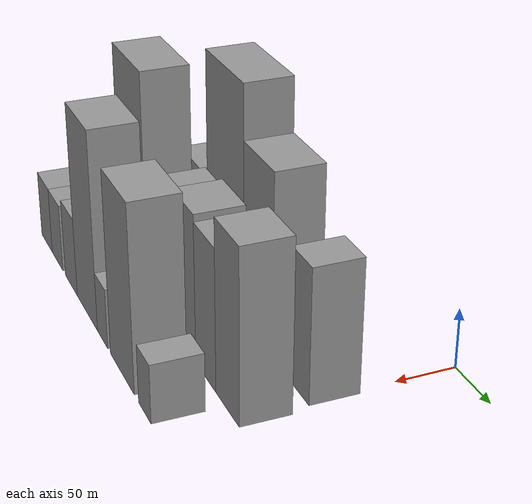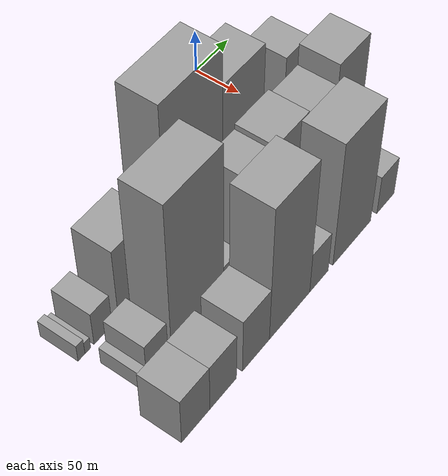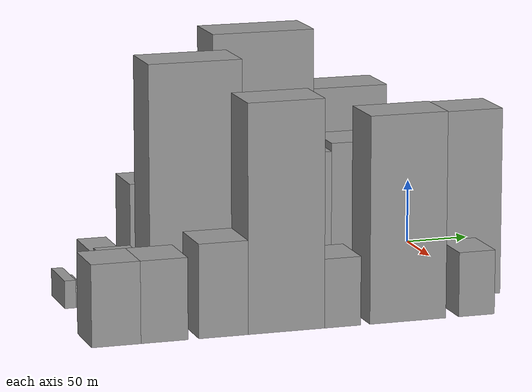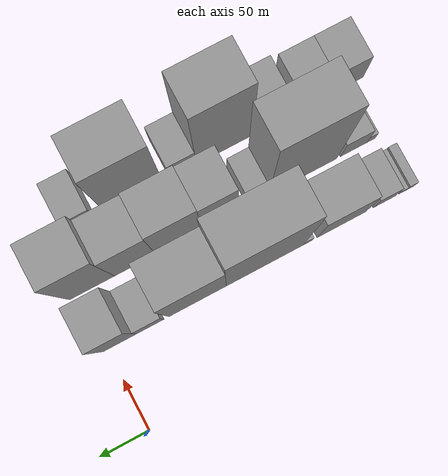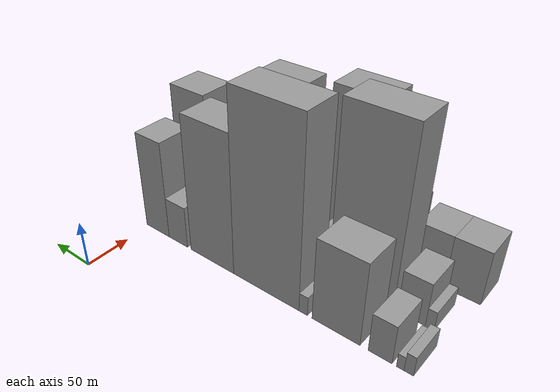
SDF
<sdf version="1.6">
 <world name="default">
  <model name="building_11">
   <static>1</static>
   <pose>100.0000 -307.1854 0 0.000000 0.000000 0.000000</pose>
   <link name="link">
    <pose>0 0 10.50 0 0 0</pose>
    <collision name="collision"><geometry><box><size>40.0000 8.5415 21.0000</size></box></geometry></collision>
    <visual name="visual">
     <cast_shadows>0</cast_shadows>
     <geometry><box><size>40.0000 8.5415 21.0000</size></box></geometry>
     <material>
      <script>
       <uri>model://grey_wall/materials/scripts</uri>
       <uri>model://grey_wall/materials/textures</uri>
       <name>vrc/grey_wall</name>
      </script>
     </material>
    </visual>
   </link>
  </model>
  <model name="building_12">
   <static>1</static>
   <pose>100.0000 -299.3905 0 0.000000 0.000000 0.000000</pose>
   <link name="link">
    <pose>0 0 7.50 0 0 0</pose>
    <collision name="collision"><geometry><box><size>40.0000 7.0482 15.0000</size></box></geometry></collision>
    <visual name="visual">
     <cast_shadows>0</cast_shadows>
     <geometry><box><size>40.0000 7.0482 15.0000</size></box></geometry>
     <material>
      <script>
       <uri>model://grey_wall/materials/scripts</uri>
       <uri>model://grey_wall/materials/textures</uri>
       <name>vrc/grey_wall</name>
      </script>
     </material>
    </visual>
   </link>
  </model>
  <model name="building_13">
   <static>1</static>
   <pose>100.0000 -280.5441 0 0.000000 0.000000 0.000000</pose>
   <link name="link">
    <pose>0 0 21.00 0 0 0</pose>
    <collision name="collision"><geometry><box><size>40.0000 22.6448 42.0000</size></box></geometry></collision>
    <visual name="visual">
     <cast_shadows>0</cast_shadows>
     <geometry><box><size>40.0000 22.6448 42.0000</size></box></geometry>
     <material>
      <script>
       <uri>model://grey_wall/materials/scripts</uri>
       <uri>model://grey_wall/materials/textures</uri>
       <name>vrc/grey_wall</name>
      </script>
     </material>
    </visual>
   </link>
  </model>
  <model name="building_14">
   <static>1</static>
   <pose>100.0000 -236.3965 0 0.000000 0.000000 0.000000</pose>
   <link name="link">
    <pose>0 0 45.00 0 0 0</pose>
    <collision name="collision"><geometry><box><size>40.0000 49.6503 90.0000</size></box></geometry></collision>
    <visual name="visual">
     <cast_shadows>0</cast_shadows>
     <geometry><box><size>40.0000 49.6503 90.0000</size></box></geometry>
     <material>
      <script>
       <uri>model://grey_wall/materials/scripts</uri>
       <uri>model://grey_wall/materials/textures</uri>
       <name>vrc/grey_wall</name>
      </script>
     </material>
    </visual>
   </link>
  </model>
  <model name="building_15">
   <static>1</static>
   <pose>100.0000 -201.8765 0 0.000000 0.000000 0.000000</pose>
   <link name="link">
    <pose>0 0 10.50 0 0 0</pose>
    <collision name="collision"><geometry><box><size>40.0000 9.3897 21.0000</size></box></geometry></collision>
    <visual name="visual">
     <cast_shadows>0</cast_shadows>
     <geometry><box><size>40.0000 9.3897 21.0000</size></box></geometry>
     <material>
      <script>
       <uri>model://grey_wall/materials/scripts</uri>
       <uri>model://grey_wall/materials/textures</uri>
       <name>vrc/grey_wall</name>
      </script>
     </material>
    </visual>
   </link>
  </model>
  <model name="building_16">
   <static>1</static>
   <pose>100.0000 -158.2002 0 0.000000 0.000000 0.000000</pose>
   <link name="link">
    <pose>0 0 99.00 0 0 0</pose>
    <collision name="collision"><geometry><box><size>40.0000 77.9629 198.0000</size></box></geometry></collision>
    <visual name="visual">
     <cast_shadows>0</cast_shadows>
     <geometry><box><size>40.0000 77.9629 198.0000</size></box></geometry>
     <material>
      <script>
       <uri>model://grey_wall/materials/scripts</uri>
       <uri>model://grey_wall/materials/textures</uri>
       <name>vrc/grey_wall</name>
      </script>
     </material>
    </visual>
   </link>
  </model>
  <model name="building_17">
   <static>1</static>
   <pose>100.0000 -90.4216 0 0.000000 0.000000 0.000000</pose>
   <link name="link">
    <pose>0 0 76.50 0 0 0</pose>
    <collision name="collision"><geometry><box><size>40.0000 57.5943 153.0000</size></box></geometry></collision>
    <visual name="visual">
     <cast_shadows>0</cast_shadows>
     <geometry><box><size>40.0000 57.5943 153.0000</size></box></geometry>
     <material>
      <script>
       <uri>model://grey_wall/materials/scripts</uri>
       <uri>model://grey_wall/materials/textures</uri>
       <name>vrc/grey_wall</name>
      </script>
     </material>
    </visual>
   </link>
  </model>
  <model name="building_18">
   <static>1</static>
   <pose>100.0000 -43.2304 0 0.000000 0.000000 0.000000</pose>
   <link name="link">
    <pose>0 0 24.00 0 0 0</pose>
    <collision name="collision"><geometry><box><size>40.0000 26.7879 48.0000</size></box></geometry></collision>
    <visual name="visual">
     <cast_shadows>0</cast_shadows>
     <geometry><box><size>40.0000 26.7879 48.0000</size></box></geometry>
     <material>
      <script>
       <uri>model://grey_wall/materials/scripts</uri>
       <uri>model://grey_wall/materials/textures</uri>
       <name>vrc/grey_wall</name>
      </script>
     </material>
    </visual>
   </link>
  </model>
  <model name="building_19">
   <static>1</static>
   <pose>100.0000 -12.8606 0 0.000000 0.000000 0.000000</pose>
   <link name="link">
    <pose>0 0 55.50 0 0 0</pose>
    <collision name="collision"><geometry><box><size>40.0000 33.9517 111.0000</size></box></geometry></collision>
    <visual name="visual">
     <cast_shadows>0</cast_shadows>
     <geometry><box><size>40.0000 33.9517 111.0000</size></box></geometry>
     <material>
      <script>
       <uri>model://grey_wall/materials/scripts</uri>
       <uri>model://grey_wall/materials/textures</uri>
       <name>vrc/grey_wall</name>
      </script>
     </material>
    </visual>
   </link>
  </model>
  <model name="building_44">
   <static>1</static>
   <pose>155.0000 -297.4022 0 0.000000 0.000000 0.000000</pose>
   <link name="link">
    <pose>0 0 10.50 0 0 0</pose>
    <collision name="collision"><geometry><box><size>40.0000 8.5468 21.0000</size></box></geometry></collision>
    <visual name="visual">
     <cast_shadows>0</cast_shadows>
     <geometry><box><size>40.0000 8.5468 21.0000</size></box></geometry>
     <material>
      <script>
       <uri>model://grey_wall/materials/scripts</uri>
       <uri>model://grey_wall/materials/textures</uri>
       <name>vrc/grey_wall</name>
      </script>
     </material>
    </visual>
   </link>
  </model>
  <model name="building_45">
   <static>1</static>
   <pose>155.0000 -279.4215 0 0.000000 0.000000 0.000000</pose>
   <link name="link">
    <pose>0 0 24.00 0 0 0</pose>
    <collision name="collision"><geometry><box><size>40.0000 27.4146 48.0000</size></box></geometry></collision>
    <visual name="visual">
     <cast_shadows>0</cast_shadows>
     <geometry><box><size>40.0000 27.4146 48.0000</size></box></geometry>
     <material>
      <script>
       <uri>model://grey_wall/materials/scripts</uri>
       <uri>model://grey_wall/materials/textures</uri>
       <name>vrc/grey_wall</name>
      </script>
     </material>
    </visual>
   </link>
  </model>
  <model name="building_46">
   <static>1</static>
   <pose>155.0000 -226.7624 0 0.000000 0.000000 0.000000</pose>
   <link name="link">
    <pose>0 0 94.50 0 0 0</pose>
    <collision name="collision"><geometry><box><size>40.0000 69.9036 189.0000</size></box></geometry></collision>
    <visual name="visual">
     <cast_shadows>0</cast_shadows>
     <geometry><box><size>40.0000 69.9036 189.0000</size></box></geometry>
     <material>
      <script>
       <uri>model://grey_wall/materials/scripts</uri>
       <uri>model://grey_wall/materials/textures</uri>
       <name>vrc/grey_wall</name>
      </script>
     </material>
    </visual>
   </link>
  </model>
  <model name="building_47">
   <static>1</static>
   <pose>155.0000 -180.9724 0 0.000000 0.000000 0.000000</pose>
   <link name="link">
    <pose>0 0 19.50 0 0 0</pose>
    <collision name="collision"><geometry><box><size>40.0000 21.6764 39.0000</size></box></geometry></collision>
    <visual name="visual">
     <cast_shadows>0</cast_shadows>
     <geometry><box><size>40.0000 21.6764 39.0000</size></box></geometry>
     <material>
      <script>
       <uri>model://grey_wall/materials/scripts</uri>
       <uri>model://grey_wall/materials/textures</uri>
       <name>vrc/grey_wall</name>
      </script>
     </material>
    </visual>
   </link>
  </model>
  <model name="building_48">
   <static>1</static>
   <pose>155.0000 -141.9574 0 0.000000 0.000000 0.000000</pose>
   <link name="link">
    <pose>0 0 58.50 0 0 0</pose>
    <collision name="collision"><geometry><box><size>40.0000 36.3535 117.0000</size></box></geometry></collision>
    <visual name="visual">
     <cast_shadows>0</cast_shadows>
     <geometry><box><size>40.0000 36.3535 117.0000</size></box></geometry>
     <material>
      <script>
       <uri>model://grey_wall/materials/scripts</uri>
       <uri>model://grey_wall/materials/textures</uri>
       <name>vrc/grey_wall</name>
      </script>
     </material>
    </visual>
   </link>
  </model>
  <model name="building_49">
   <static>1</static>
   <pose>155.0000 -100.5541 0 0.000000 0.000000 0.000000</pose>
   <link name="link">
    <pose>0 0 61.50 0 0 0</pose>
    <collision name="collision"><geometry><box><size>40.0000 46.4531 123.0000</size></box></geometry></collision>
    <visual name="visual">
     <cast_shadows>0</cast_shadows>
     <geometry><box><size>40.0000 46.4531 123.0000</size></box></geometry>
     <material>
      <script>
       <uri>model://grey_wall/materials/scripts</uri>
       <uri>model://grey_wall/materials/textures</uri>
       <name>vrc/grey_wall</name>
      </script>
     </material>
    </visual>
   </link>
  </model>
  <model name="building_50">
   <static>1</static>
   <pose>155.0000 -56.4309 0 0.000000 0.000000 0.000000</pose>
   <link name="link">
    <pose>0 0 58.50 0 0 0</pose>
    <collision name="collision"><geometry><box><size>40.0000 41.7934 117.0000</size></box></geometry></collision>
    <visual name="visual">
     <cast_shadows>0</cast_shadows>
     <geometry><box><size>40.0000 41.7934 117.0000</size></box></geometry>
     <material>
      <script>
       <uri>model://grey_wall/materials/scripts</uri>
       <uri>model://grey_wall/materials/textures</uri>
       <name>vrc/grey_wall</name>
      </script>
     </material>
    </visual>
   </link>
  </model>
  <model name="building_51">
   <static>1</static>
   <pose>155.0000 -12.9782 0 0.000000 0.000000 0.000000</pose>
   <link name="link">
    <pose>0 0 70.50 0 0 0</pose>
    <collision name="collision"><geometry><box><size>40.0000 45.1121 141.0000</size></box></geometry></collision>
    <visual name="visual">
     <cast_shadows>0</cast_shadows>
     <geometry><box><size>40.0000 45.1121 141.0000</size></box></geometry>
     <material>
      <script>
       <uri>model://grey_wall/materials/scripts</uri>
       <uri>model://grey_wall/materials/textures</uri>
       <name>vrc/grey_wall</name>
      </script>
     </material>
    </visual>
   </link>
  </model>
  <model name="building_75">
   <static>1</static>
   <pose>210.0000 -301.8585 0 0.000000 0.000000 0.000000</pose>
   <link name="link">
    <pose>0 0 30.00 0 0 0</pose>
    <collision name="collision"><geometry><box><size>40.0000 35.8005 60.0000</size></box></geometry></collision>
    <visual name="visual">
     <cast_shadows>0</cast_shadows>
     <geometry><box><size>40.0000 35.8005 60.0000</size></box></geometry>
     <material>
      <script>
       <uri>model://grey_wall/materials/scripts</uri>
       <uri>model://grey_wall/materials/textures</uri>
       <name>vrc/grey_wall</name>
      </script>
     </material>
    </visual>
   </link>
  </model>
  <model name="building_76">
   <static>1</static>
   <pose>210.0000 -266.6783 0 0.000000 0.000000 0.000000</pose>
   <link name="link">
    <pose>0 0 30.00 0 0 0</pose>
    <collision name="collision"><geometry><box><size>40.0000 34.5599 60.0000</size></box></geometry></collision>
    <visual name="visual">
     <cast_shadows>0</cast_shadows>
     <geometry><box><size>40.0000 34.5599 60.0000</size></box></geometry>
     <material>
      <script>
       <uri>model://grey_wall/materials/scripts</uri>
       <uri>model://grey_wall/materials/textures</uri>
       <name>vrc/grey_wall</name>
      </script>
     </material>
    </visual>
   </link>
  </model>
  <model name="building_77">
   <static>1</static>
   <pose>210.0000 -223.0939 0 0.000000 0.000000 0.000000</pose>
   <link name="link">
    <pose>0 0 34.50 0 0 0</pose>
    <collision name="collision"><geometry><box><size>40.0000 36.6089 69.0000</size></box></geometry></collision>
    <visual name="visual">
     <cast_shadows>0</cast_shadows>
     <geometry><box><size>40.0000 36.6089 69.0000</size></box></geometry>
     <material>
      <script>
       <uri>model://grey_wall/materials/scripts</uri>
       <uri>model://grey_wall/materials/textures</uri>
       <name>vrc/grey_wall</name>
      </script>
     </material>
    </visual>
   </link>
  </model>
  <model name="building_78">
   <static>1</static>
   <pose>210.0000 -176.0861 0 0.000000 0.000000 0.000000</pose>
   <link name="link">
    <pose>0 0 84.00 0 0 0</pose>
    <collision name="collision"><geometry><box><size>40.0000 57.4068 168.0000</size></box></geometry></collision>
    <visual name="visual">
     <cast_shadows>0</cast_shadows>
     <geometry><box><size>40.0000 57.4068 168.0000</size></box></geometry>
     <material>
      <script>
       <uri>model://grey_wall/materials/scripts</uri>
       <uri>model://grey_wall/materials/textures</uri>
       <name>vrc/grey_wall</name>
      </script>
     </material>
    </visual>
   </link>
  </model>
  <model name="building_79">
   <static>1</static>
   <pose>210.0000 -133.6789 0 0.000000 0.000000 0.000000</pose>
   <link name="link">
    <pose>0 0 25.50 0 0 0</pose>
    <collision name="collision"><geometry><box><size>40.0000 27.4076 51.0000</size></box></geometry></collision>
    <visual name="visual">
     <cast_shadows>0</cast_shadows>
     <geometry><box><size>40.0000 27.4076 51.0000</size></box></geometry>
     <material>
      <script>
       <uri>model://grey_wall/materials/scripts</uri>
       <uri>model://grey_wall/materials/textures</uri>
       <name>vrc/grey_wall</name>
      </script>
     </material>
    </visual>
   </link>
  </model>
  <model name="building_80">
   <static>1</static>
   <pose>210.0000 -83.7499 0 0.000000 0.000000 0.000000</pose>
   <link name="link">
    <pose>0 0 76.50 0 0 0</pose>
    <collision name="collision"><geometry><box><size>40.0000 58.4505 153.0000</size></box></geometry></collision>
    <visual name="visual">
     <cast_shadows>0</cast_shadows>
     <geometry><box><size>40.0000 58.4505 153.0000</size></box></geometry>
     <material>
      <script>
       <uri>model://grey_wall/materials/scripts</uri>
       <uri>model://grey_wall/materials/textures</uri>
       <name>vrc/grey_wall</name>
      </script>
     </material>
    </visual>
   </link>
  </model>
  <model name="building_81">
   <static>1</static>
   <pose>210.0000 -30.6038 0 0.000000 0.000000 0.000000</pose>
   <link name="link">
    <pose>0 0 24.00 0 0 0</pose>
    <collision name="collision"><geometry><box><size>40.0000 27.8416 48.0000</size></box></geometry></collision>
    <visual name="visual">
     <cast_shadows>0</cast_shadows>
     <geometry><box><size>40.0000 27.8416 48.0000</size></box></geometry>
     <material>
      <script>
       <uri>model://grey_wall/materials/scripts</uri>
       <uri>model://grey_wall/materials/textures</uri>
       <name>vrc/grey_wall</name>
      </script>
     </material>
    </visual>
   </link>
  </model>
 </world>
</sdf>
